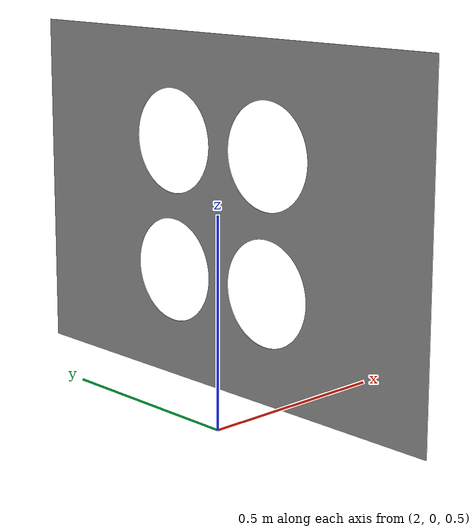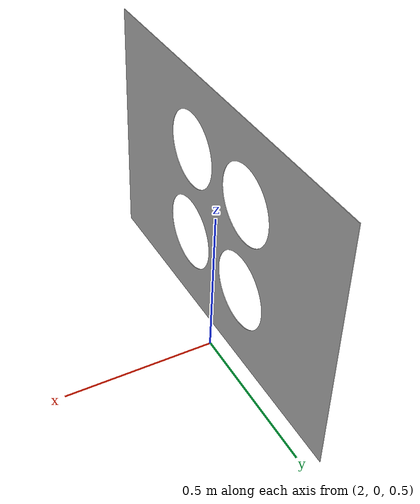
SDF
<?xml version='1.0'?>
<sdf version='1.6'>
	<model name="lvt2_target">
		<pose>2 0 1 0 0 1.5708</pose>
		<static>true</static>
		<link name="calib_target">
		  <visual name="visual">
			  <pose>0 0 0 0 0 0</pose>
				<geometry>
				  <mesh><uri>model://calib_target/lvt2_target/lvt2_target.obj</uri></mesh>
				</geometry>
		  <plugin
		  filename="ignition-gazebo-thermal-system"
		  name="gz::sim::systems::Thermal">
		  <temperature>350.0</temperature>
		</plugin>
		  </visual>
			<collision name="collision">
			  <pose>0 0 0  0 0 0</pose>
				<geometry>
				  <mesh><uri>model://calib_target/lvt2_target/lvt2_target.obj</uri></mesh>
				</geometry>
			</collision>
		</link>
	  </model>
</sdf>
